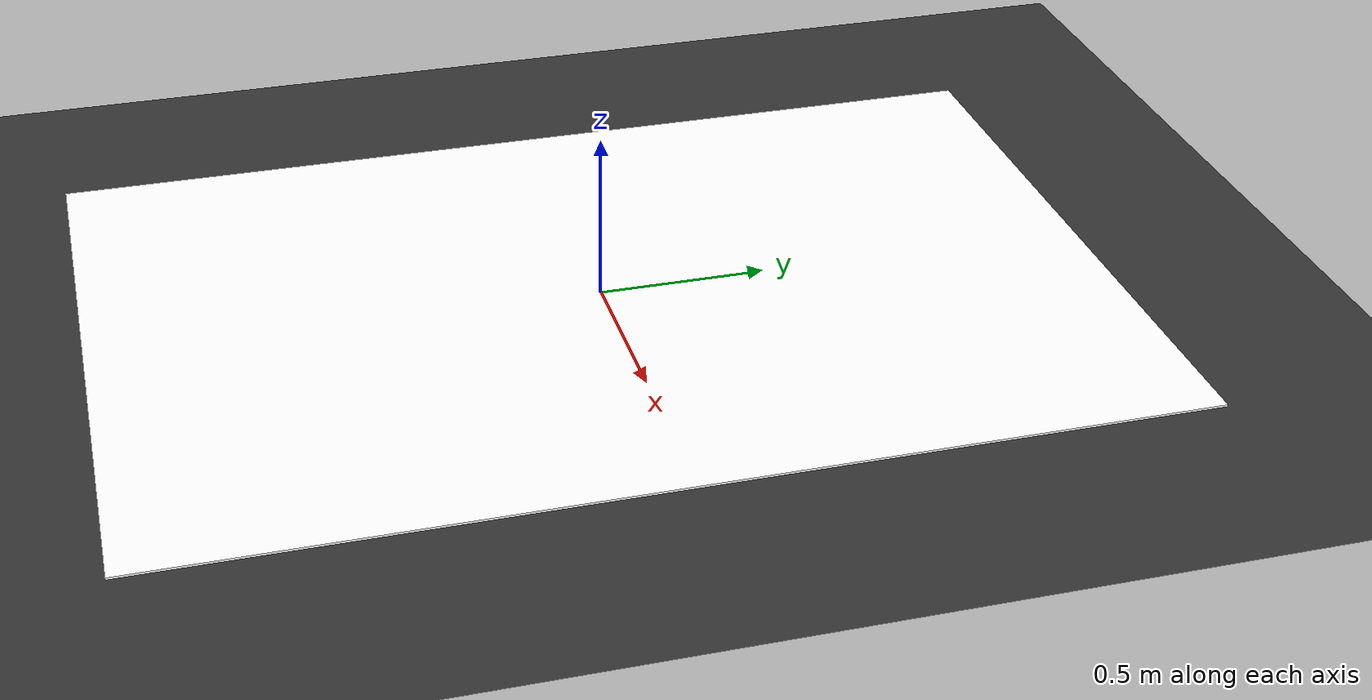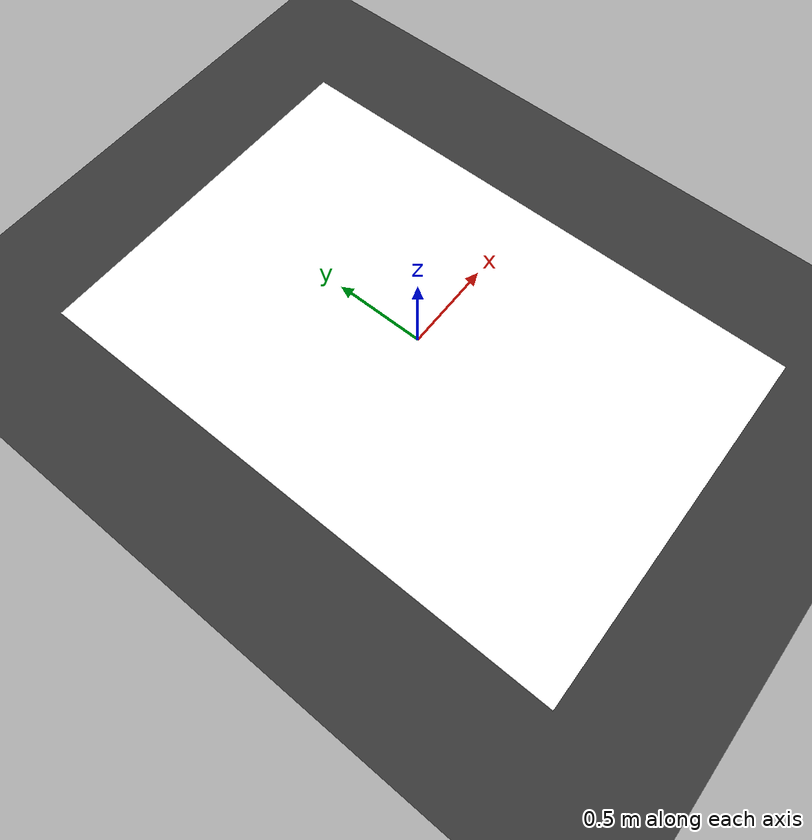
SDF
<?xml version="1.0"?>
<sdf version="1.9">
  <world name="eurobot_2026_arena">
    <!-- Set the background color -->
    <background>
      <color>0.7 0.7 0.7 1</color>
    </background>

    <!-- Add a light source -->
    <light type="directional" name="sun">
      <diffuse>1 1 1 1</diffuse>
      <specular>0.5 0.5 0.5 1</specular>
      <direction>-0.5 0.5 -1</direction>
    </light>

    <!-- Set the gravity of the world -->
    <gravity>0 0 -9.81</gravity>

    <!-- Set the physics engine -->
    <physics type="ode">
      <max_step_size>0.001</max_step_size>
      <real_time_factor>1</real_time_factor>
    </physics>
    <plugin
        filename="libignition-gazebo-physics-system.so"
        name="ignition::gazebo::systems::Physics">
    </plugin>
    <plugin
        filename="libignition-gazebo-user-commands-system.so"
        name="ignition::gazebo::systems::UserCommands">
    </plugin>
    <plugin
        filename="libignition-gazebo-scene-broadcaster-system.so"
        name="ignition::gazebo::systems::SceneBroadcaster">
    </plugin>
    <plugin
        filename="libignition-gazebo-sensors-system.so"
        name="ignition::gazebo::systems::Sensors">
    </plugin>

    <model name="ground_plane">
        <static>true</static>
        <link name="link">
            <collision name="collision">
            <geometry>
                <plane>
                <normal>0 0 1</normal>
                </plane>
            </geometry>
            </collision>
            <visual name="visual">
            <geometry>
                <plane>
                <normal>0 0 1</normal>
                <size>20 20</size>
                </plane>
            </geometry>
            <material>
                <ambient>0.8 0.8 0.8 1</ambient>
                <diffuse>0.2 0.2 0.2 1</diffuse>
                <specular>0.8 0.8 0.8 1</specular>
            </material>
            </visual>
        </link>
    </model>

    <!-- Include mat model -->
    <include>
      <uri>file://models/mat</uri>
      <pose>0 0 0 0 0 0</pose>
    </include>

  </world>
</sdf>

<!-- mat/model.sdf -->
<sdf version="1.9">
  <!-- Define a floor mat (3000mm x 2000mm x 70mm) -->
	<model name="floor_mat">
		<static>true</static>
		<link name="floor_link">
			<collision name="collision">
				<geometry>
					<box>
						<size>2 3 0.007</size>  <!-- 3000mm x 2000mm x 70mm -->
					</box>
				</geometry>
				<surface>
					<friction>
						<ode>
							<mu>0.9</mu>
							<mu2>0.9</mu2>
						</ode>
					</friction>
				</surface>
			</collision>
			<visual name="visual">
					<geometry>
							<box>
									<size>2 3 0.007</size> <!-- 3000mm x 2000mm x 70mm -->
							</box>
					</geometry>
					<material>
							<diffuse>1 1 1 1</diffuse>
							<pbr>
									<metal>
											<albedo_map>file:///models/mat/table_FINALE_smaller.png</albedo_map>
											<metalness>0.0</metalness>
											<roughness>0.8</roughness>
									</metal>
							</pbr>
					</material>
			</visual>
		</link>
	</model>
</sdf>
